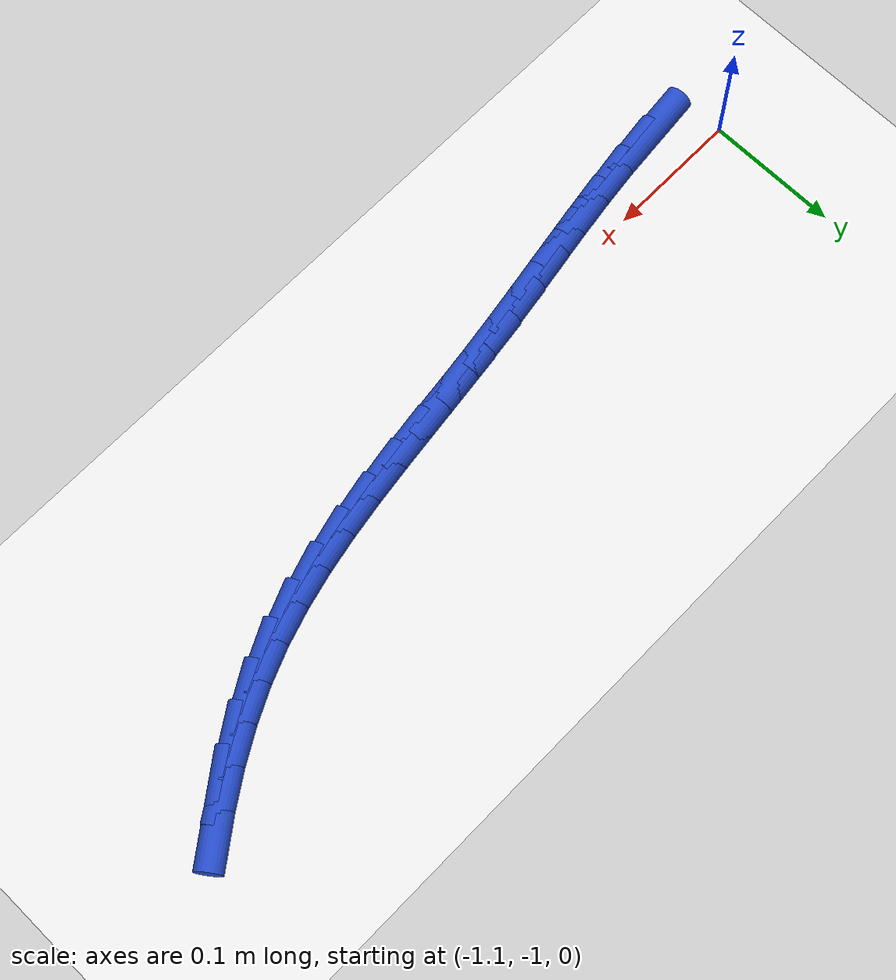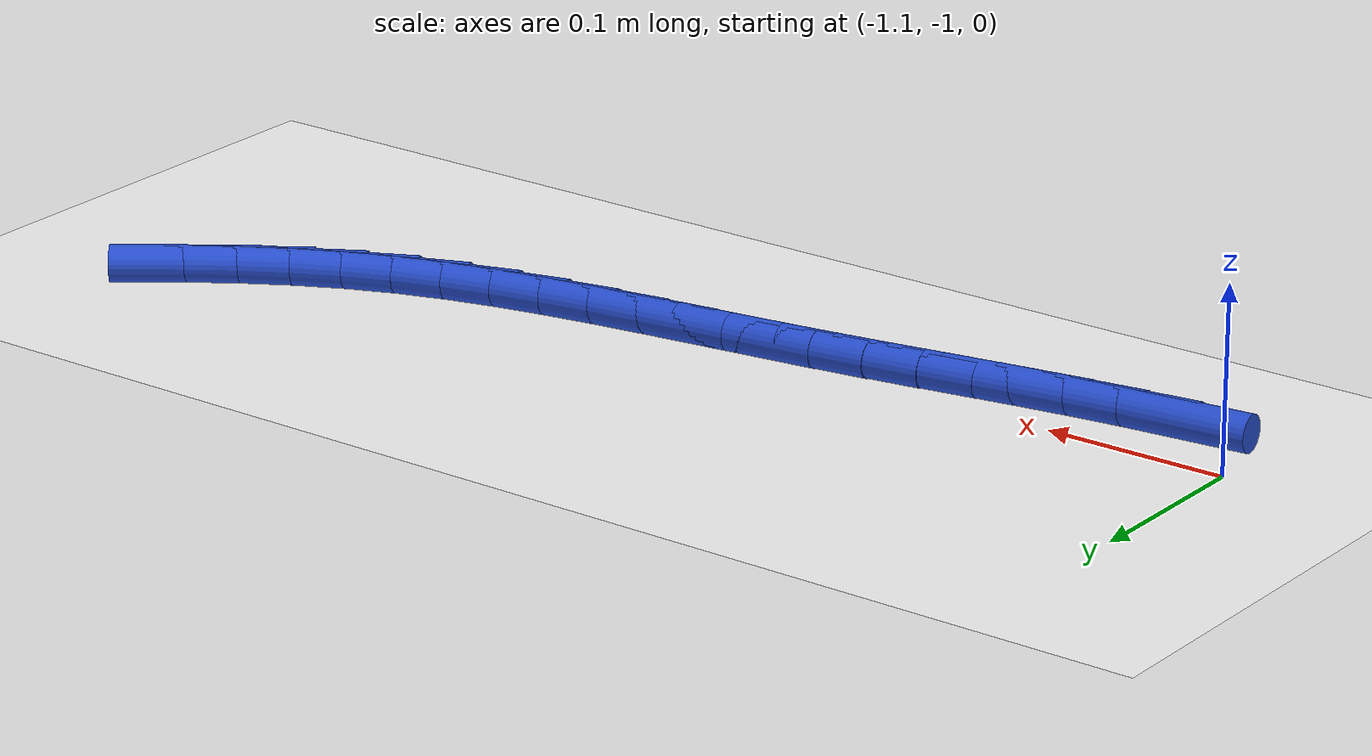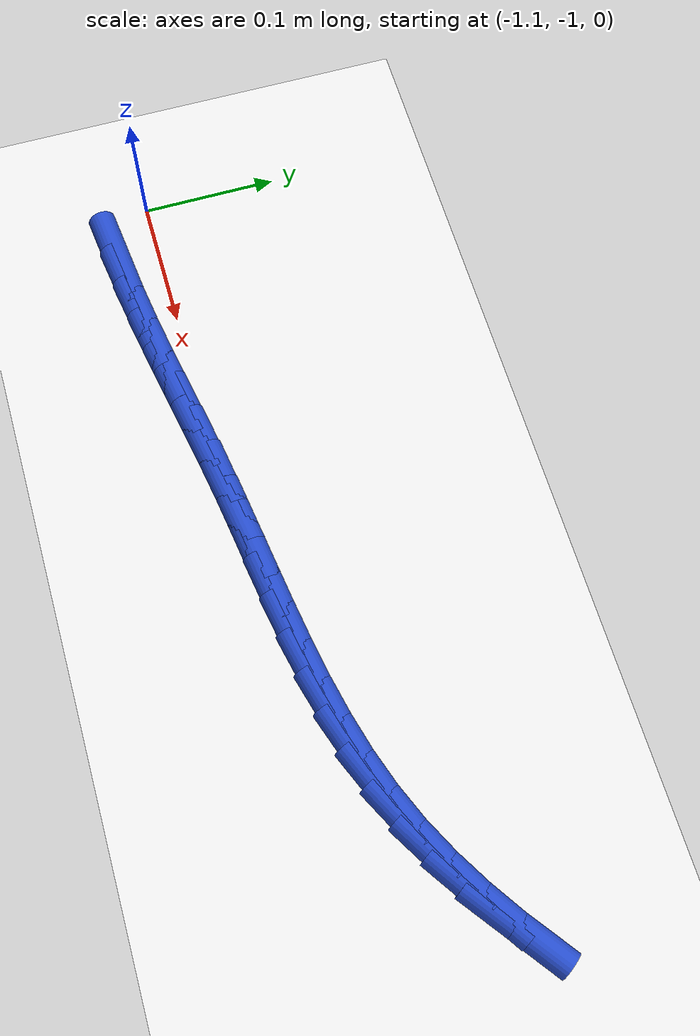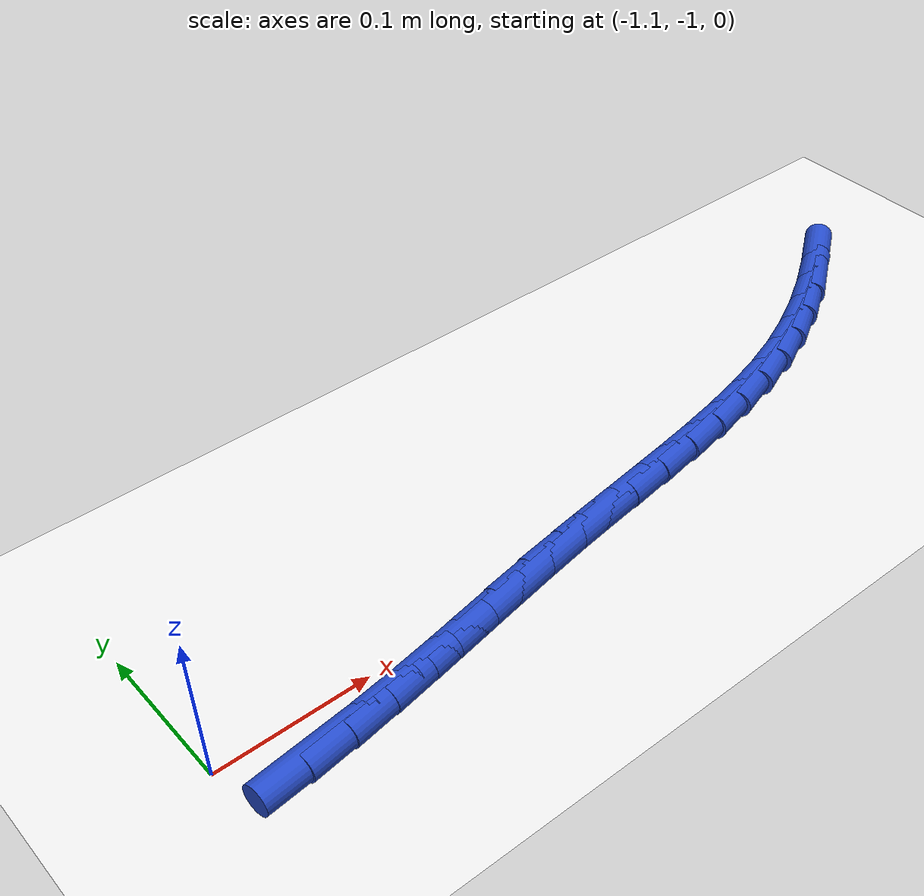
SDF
<sdf version="1.6">
 <world name="default">
  <model name="ground_plane">
   <static>1</static>
   <link name="link">
    <collision name="collision">
     <geometry><plane><normal>0 0 1</normal><size>100 100</size></plane></geometry>
     <surface><friction><ode><mu>100</mu><mu2>50</mu2></ode></friction></surface>
    </collision>
    <visual name="visual">
     <cast_shadows>0</cast_shadows>
     <geometry><plane><normal>0 0 1</normal><size>100 100</size></plane></geometry>
     <material>
      <script><uri>file://media/materials/scripts/gazebo.material</uri><name>Gazebo/WhiteGlow</name></script>
     </material>
    </visual>
   </link>
  </model>
  <model name="line">
   <link name="link_174">
    <pose>-1.0548966735552752 -1.0309415801660113 0.01 0 1.57 0.10420572387424863</pose>
    <collision name="collision">
     <geometry><cylinder><radius>0.01</radius><length>0.08</length></cylinder></geometry>
    </collision>
    <visual name="visual">
     <material>
      <script><name>Gazebo/Blue</name><uri>file://media/materials/scripts/gazebo.material</uri></script>
     </material>
     <geometry><cylinder><radius>0.01</radius><length>0.08</length></cylinder></geometry>
    </visual>
   </link>
   <link name="link_175">
    <pose>-1.0259385473234999 -1.0279130074609872 0.01 0 1.57 0.13628696974432797</pose>
    <collision name="collision">
     <geometry><cylinder><radius>0.01</radius><length>0.08</length></cylinder></geometry>
    </collision>
    <visual name="visual">
     <material>
      <script><name>Gazebo/Blue</name><uri>file://media/materials/scripts/gazebo.material</uri></script>
     </material>
     <geometry><cylinder><radius>0.01</radius><length>0.08</length></cylinder></geometry>
    </visual>
   </link>
   <link name="link_176">
    <pose>-0.9967975532893385 -1.023916696317789 0.01 0 1.57 0.15881993422605015</pose>
    <collision name="collision">
     <geometry><cylinder><radius>0.01</radius><length>0.08</length></cylinder></geometry>
    </collision>
    <visual name="visual">
     <material>
      <script><name>Gazebo/Blue</name><uri>file://media/materials/scripts/gazebo.material</uri></script>
     </material>
     <geometry><cylinder><radius>0.01</radius><length>0.08</length></cylinder></geometry>
    </visual>
   </link>
   <link name="link_177">
    <pose>-0.9675000080525269 -1.0192241409560976 0.01 0 1.57 0.17217203363360936</pose>
    <collision name="collision">
     <geometry><cylinder><radius>0.01</radius><length>0.08</length></cylinder></geometry>
    </collision>
    <visual name="visual">
     <material>
      <script><name>Gazebo/Blue</name><uri>file://media/materials/scripts/gazebo.material</uri></script>
     </material>
     <geometry><cylinder><radius>0.01</radius><length>0.08</length></cylinder></geometry>
    </visual>
   </link>
   <link name="link_178">
    <pose>-0.9380722282128011 -1.014106835595595 0.01 0 1.57 0.17661184084450024</pose>
    <collision name="collision">
     <geometry><cylinder><radius>0.01</radius><length>0.08</length></cylinder></geometry>
    </collision>
    <visual name="visual">
     <material>
      <script><name>Gazebo/Blue</name><uri>file://media/materials/scripts/gazebo.material</uri></script>
     </material>
     <geometry><cylinder><radius>0.01</radius><length>0.08</length></cylinder></geometry>
    </visual>
   </link>
   <link name="link_179">
    <pose>-0.9085405303698967 -1.0088362744559618 0.01 0 1.57 0.17228520292943245</pose>
    <collision name="collision">
     <geometry><cylinder><radius>0.01</radius><length>0.08</length></cylinder></geometry>
    </collision>
    <visual name="visual">
     <material>
      <script><name>Gazebo/Blue</name><uri>file://media/materials/scripts/gazebo.material</uri></script>
     </material>
     <geometry><cylinder><radius>0.01</radius><length>0.08</length></cylinder></geometry>
    </visual>
   </link>
   <link name="link_180">
    <pose>-0.8789312311235514 -1.00368395175688 0.01 0 1.57 0.15921540854851482</pose>
    <collision name="collision">
     <geometry><cylinder><radius>0.01</radius><length>0.08</length></cylinder></geometry>
    </collision>
    <visual name="visual">
     <material>
      <script><name>Gazebo/Blue</name><uri>file://media/materials/scripts/gazebo.material</uri></script>
     </material>
     <geometry><cylinder><radius>0.01</radius><length>0.08</length></cylinder></geometry>
    </visual>
   </link>
   <link name="link_181">
    <pose>-0.8492706662103015 -0.9989212202591679 0.01 0 1.57 0.14183582561837874</pose>
    <collision name="collision">
     <geometry><cylinder><radius>0.01</radius><length>0.08</length></cylinder></geometry>
    </collision>
    <visual name="visual">
     <material>
      <script><name>Gazebo/Blue</name><uri>file://media/materials/scripts/gazebo.material</uri></script>
     </material>
     <geometry><cylinder><radius>0.01</radius><length>0.08</length></cylinder></geometry>
    </visual>
   </link>
   <link name="link_182">
    <pose>-0.8196033726725864 -0.9946848890215431 0.01 0 1.57 0.133027786056908</pose>
    <collision name="collision">
     <geometry><cylinder><radius>0.01</radius><length>0.08</length></cylinder></geometry>
    </collision>
    <visual name="visual">
     <material>
      <script><name>Gazebo/Blue</name><uri>file://media/materials/scripts/gazebo.material</uri></script>
     </material>
     <geometry><cylinder><radius>0.01</radius><length>0.08</length></cylinder></geometry>
    </visual>
   </link>
   <link name="link_183">
    <pose>-0.7900259536576831 -0.9907268954602059 0.01 0 1.57 0.1351769596777643</pose>
    <collision name="collision">
     <geometry><cylinder><radius>0.01</radius><length>0.08</length></cylinder></geometry>
    </collision>
    <visual name="visual">
     <material>
      <script><name>Gazebo/Blue</name><uri>file://media/materials/scripts/gazebo.material</uri></script>
     </material>
     <geometry><cylinder><radius>0.01</radius><length>0.08</length></cylinder></geometry>
    </visual>
   </link>
   <link name="link_184">
    <pose>-0.7606442627239701 -0.9867307981309326 0.01 0 1.57 0.14850741087505728</pose>
    <collision name="collision">
     <geometry><cylinder><radius>0.01</radius><length>0.08</length></cylinder></geometry>
    </collision>
    <visual name="visual">
     <material>
      <script><name>Gazebo/Blue</name><uri>file://media/materials/scripts/gazebo.material</uri></script>
     </material>
     <geometry><cylinder><radius>0.01</radius><length>0.08</length></cylinder></geometry>
    </visual>
   </link>
   <link name="link_185">
    <pose>-0.7315641534298291 -0.9823801555895013 0.01 0 1.57 0.17337801967827132</pose>
    <collision name="collision">
     <geometry><cylinder><radius>0.01</radius><length>0.08</length></cylinder></geometry>
    </collision>
    <visual name="visual">
     <material>
      <script><name>Gazebo/Blue</name><uri>file://media/materials/scripts/gazebo.material</uri></script>
     </material>
     <geometry><cylinder><radius>0.01</radius><length>0.08</length></cylinder></geometry>
    </visual>
   </link>
   <link name="link_186">
    <pose>-0.7028914793336389 -0.9773585263916891 0.01 0 1.57 0.21024106771485498</pose>
    <collision name="collision">
     <geometry><cylinder><radius>0.01</radius><length>0.08</length></cylinder></geometry>
    </collision>
    <visual name="visual">
     <material>
      <script><name>Gazebo/Blue</name><uri>file://media/materials/scripts/gazebo.material</uri></script>
     </material>
     <geometry><cylinder><radius>0.01</radius><length>0.08</length></cylinder></geometry>
    </visual>
   </link>
   <link name="link_187">
    <pose>-0.6747320939937802 -0.9713494690932737 0.01 0 1.57 0.2595465228051162</pose>
    <collision name="collision">
     <geometry><cylinder><radius>0.01</radius><length>0.08</length></cylinder></geometry>
    </collision>
    <visual name="visual">
     <material>
      <script><name>Gazebo/Blue</name><uri>file://media/materials/scripts/gazebo.material</uri></script>
     </material>
     <geometry><cylinder><radius>0.01</radius><length>0.08</length></cylinder></geometry>
    </visual>
   </link>
   <link name="link_188">
    <pose>-0.6471918509686314 -0.9640365422500319 0.01 0 1.57 0.32157675900141536</pose>
    <collision name="collision">
     <geometry><cylinder><radius>0.01</radius><length>0.08</length></cylinder></geometry>
    </collision>
    <visual name="visual">
     <material>
      <script><name>Gazebo/Blue</name><uri>file://media/materials/scripts/gazebo.material</uri></script>
     </material>
     <geometry><cylinder><radius>0.01</radius><length>0.08</length></cylinder></geometry>
    </visual>
   </link>
   <link name="link_189">
    <pose>-0.6203766038165741 -0.9551033044177417 0.01 0 1.57 0.395483420902811</pose>
    <collision name="collision">
     <geometry><cylinder><radius>0.01</radius><length>0.08</length></cylinder></geometry>
    </collision>
    <visual name="visual">
     <material>
      <script><name>Gazebo/Blue</name><uri>file://media/materials/scripts/gazebo.material</uri></script>
     </material>
     <geometry><cylinder><radius>0.01</radius><length>0.08</length></cylinder></geometry>
    </visual>
   </link>
   <link name="link_190">
    <pose>-0.5943853983804591 -0.9442525117328479 0.01 0 1.57 0.47003659214051896</pose>
    <collision name="collision">
     <geometry><cylinder><radius>0.01</radius><length>0.08</length></cylinder></geometry>
    </collision>
    <visual name="visual">
     <material>
      <script><name>Gazebo/Blue</name><uri>file://media/materials/scripts/gazebo.material</uri></script>
     </material>
     <geometry><cylinder><radius>0.01</radius><length>0.08</length></cylinder></geometry>
    </visual>
   </link>
   <link name="link_191">
    <pose>-0.5692179145756846 -0.931467129661922 0.01 0 1.57 0.5365943732815646</pose>
    <collision name="collision">
     <geometry><cylinder><radius>0.01</radius><length>0.08</length></cylinder></geometry>
    </collision>
    <visual name="visual">
     <material>
      <script><name>Gazebo/Blue</name><uri>file://media/materials/scripts/gazebo.material</uri></script>
     </material>
     <geometry><cylinder><radius>0.01</radius><length>0.08</length></cylinder></geometry>
    </visual>
   </link>
   <link name="link_192">
    <pose>-0.5447985978648278 -0.9169422828710473 0.01 0 1.57 0.5947223508054568</pose>
    <collision name="collision">
     <geometry><cylinder><radius>0.01</radius><length>0.08</length></cylinder></geometry>
    </collision>
    <visual name="visual">
     <material>
      <script><name>Gazebo/Blue</name><uri>file://media/materials/scripts/gazebo.material</uri></script>
     </material>
     <geometry><cylinder><radius>0.01</radius><length>0.08</length></cylinder></geometry>
    </visual>
   </link>
   <link name="link_193">
    <pose>-0.5210500296871633 -0.9008783525235302 0.01 0 1.57 0.6445010221290409</pose>
    <collision name="collision">
     <geometry><cylinder><radius>0.01</radius><length>0.08</length></cylinder></geometry>
    </collision>
    <visual name="visual">
     <material>
      <script><name>Gazebo/Blue</name><uri>file://media/materials/scripts/gazebo.material</uri></script>
     </material>
     <geometry><cylinder><radius>0.01</radius><length>0.08</length></cylinder></geometry>
    </visual>
   </link>
  </model>
 </world>
</sdf>
